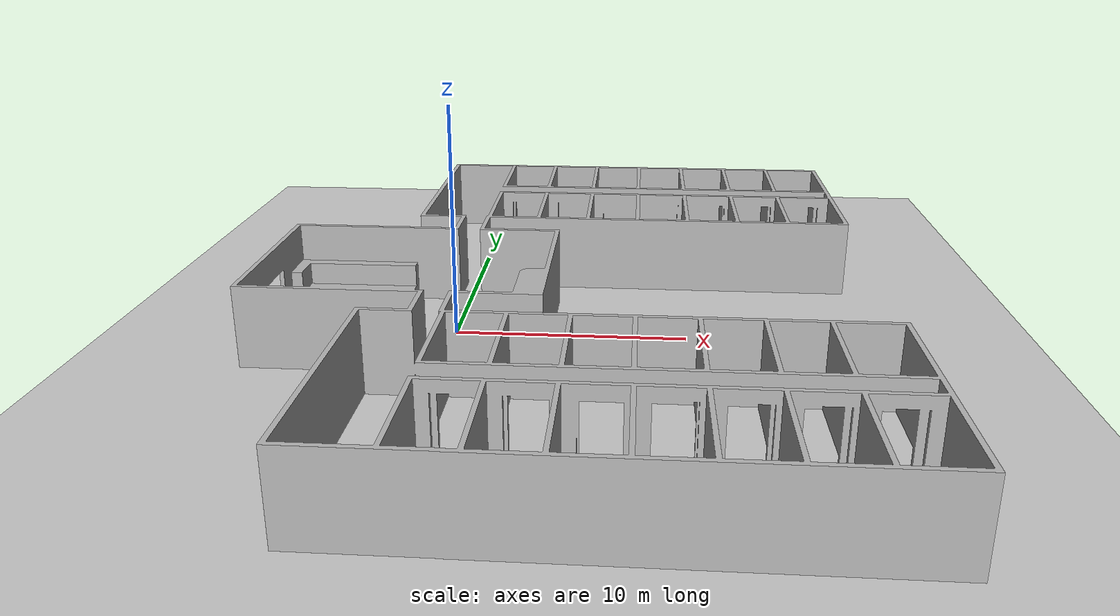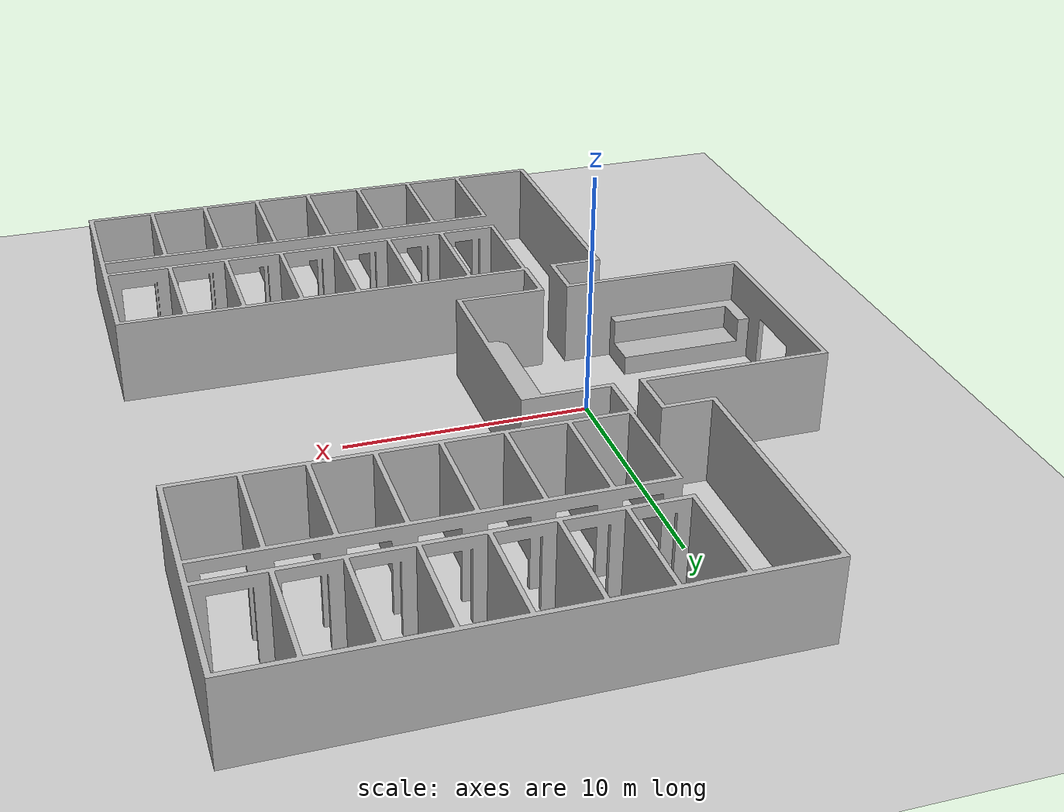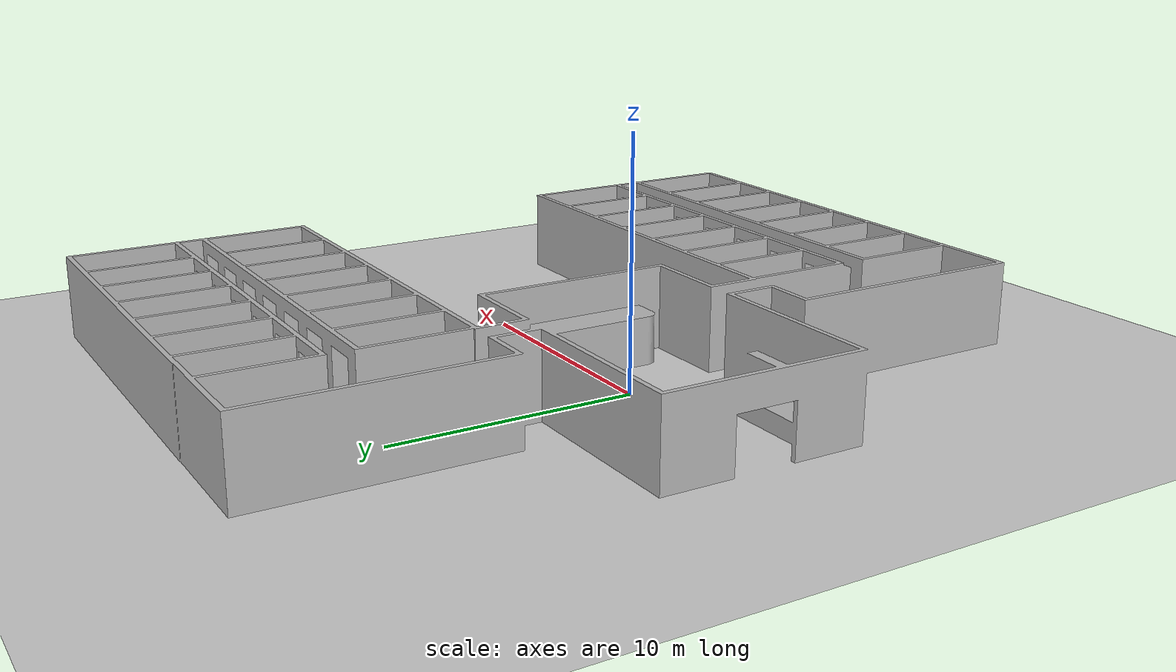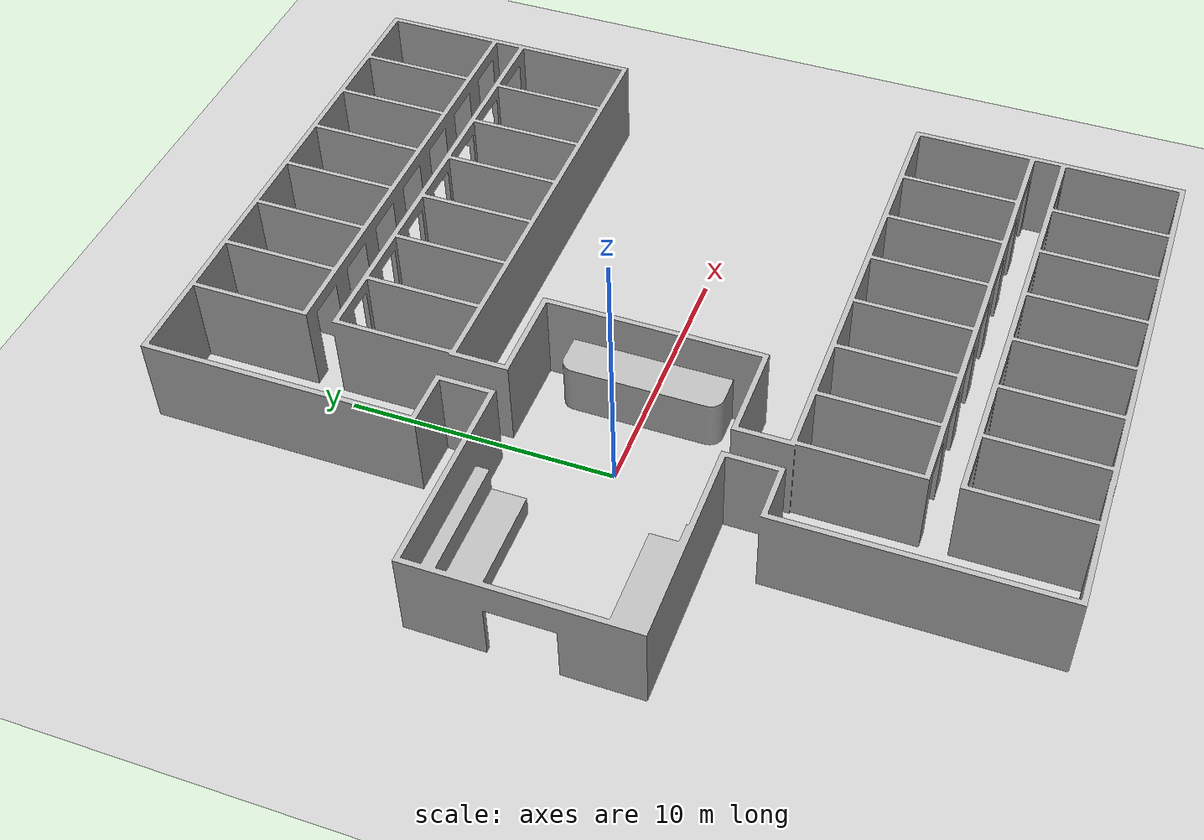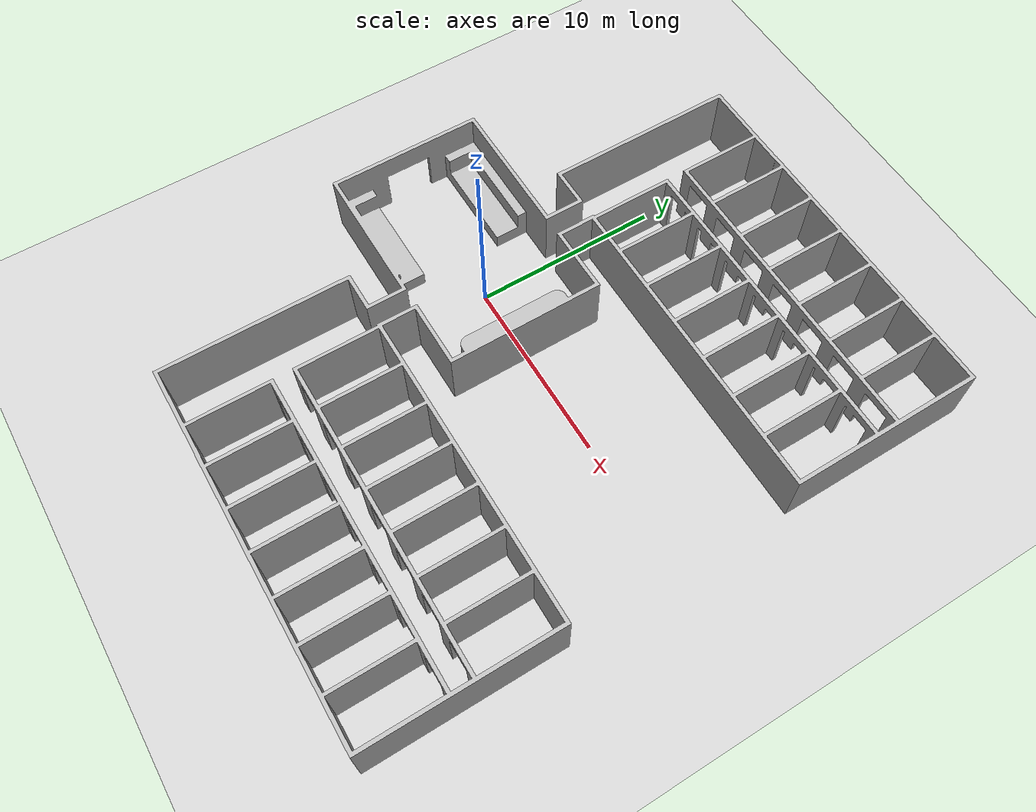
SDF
<sdf version="1.7">
  <world name="default">
    <include>
      <uri>model://ground_plane</uri>
    </include>
    <include>
      <uri>model://sun</uri>
    </include>
    <model name="box">
      <static>true</static>
      <pose>0 0 0 0 0 0</pose>
      <link name="link_hotel">
        <collision name="collision">
          <geometry>
            <mesh>
            <uri>model://meshes/finh.stl</uri>
            <scale>0.001 0.001 0.001</scale>
            </mesh>
          </geometry>
        </collision>
        <visual name="visual">
          <geometry>
            <mesh>
            <uri>model://meshes/finh.stl</uri>
            <scale>0.001 0.001 0.001</scale>
            </mesh>
          </geometry>
        </visual>
        <mass>1500</mass>
      </link>
      <joint name="bj" type="fixed">
        <parent>sun</parent>
        <child>link_hotel</child>
      </joint>
      <velocity>0 0 0 0 0 0</velocity>
    </model>
  </world>
</sdf>
